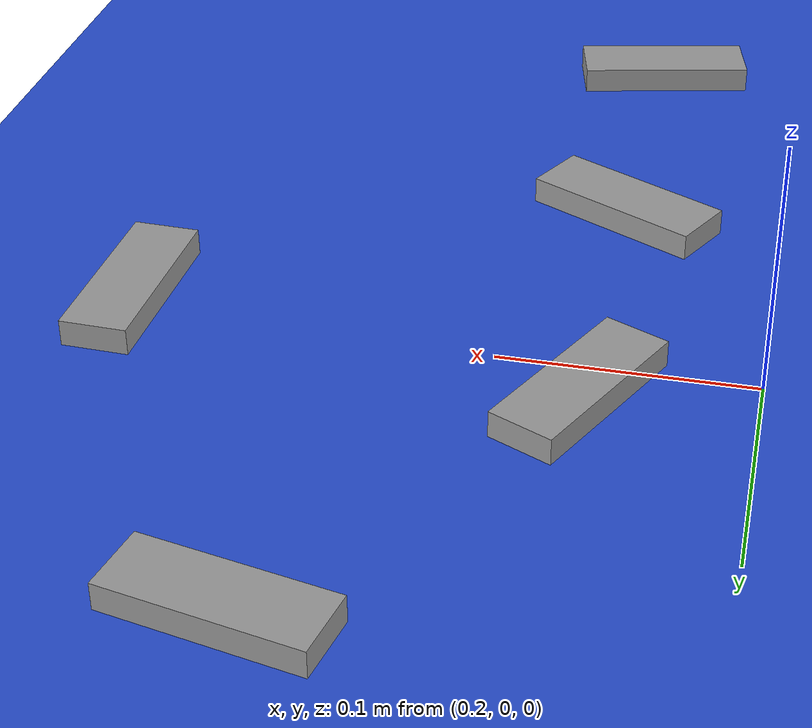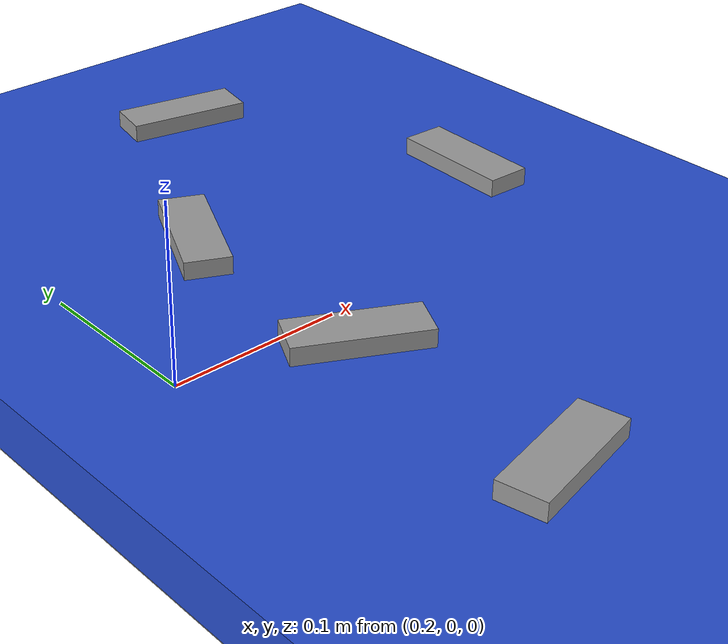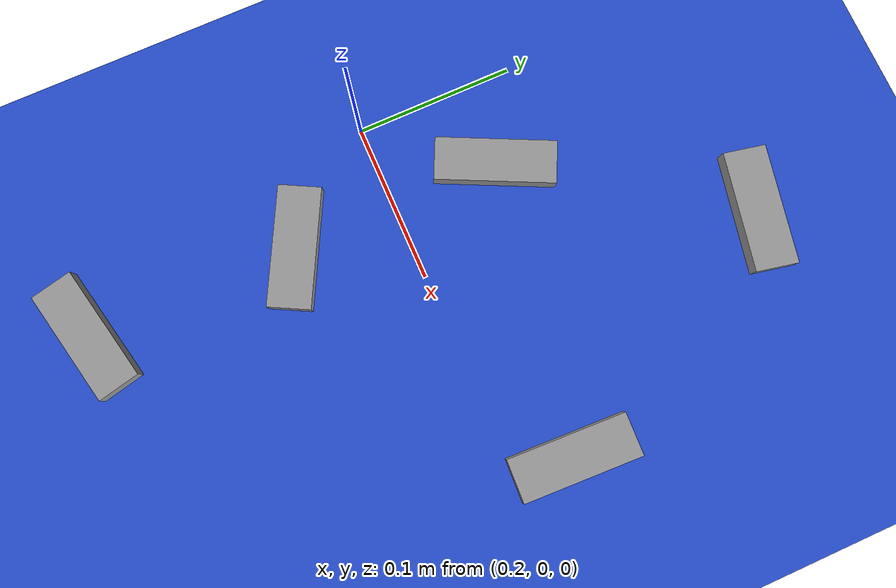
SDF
<sdf version="1.6">
 <world name="default">
  <light name="sun" type="directional">
   <pose>0 0 10 0 -0 0</pose>
   <diffuse>0.8 0.8 0.8 1</diffuse>
   <specular>0.1 0.1 0.1 1</specular>
   <attenuation>
    <range>1000</range>
    <constant>0.9</constant>
    <linear>0.01</linear>
    <quadratic>0.001</quadratic>
   </attenuation>
   <direction>-0.5 0.5 -1</direction>
  </light>
  <model name="ground_plane">
   <static>1</static>
   <link name="link">
    <collision name="collision">
     <geometry><plane><normal>0 0 1</normal><size>100 100</size></plane></geometry>
     <surface><friction><ode><mu>100</mu><mu2>50</mu2></ode></friction></surface>
    </collision>
    <visual name="visual">
     <cast_shadows>0</cast_shadows>
     <geometry><plane><normal>0 0 1</normal><size>100 100</size></plane></geometry>
     <material>
      <script><uri>file://media/materials/scripts/gazebo.material</uri><name>Gazebo/Grey</name></script>
     </material>
    </visual>
   </link>
  </model>
  <gravity>0 0 -9.8</gravity>
  <magnetic_field>6e-06 2.3e-05 -4.2e-05</magnetic_field>
  <atmosphere type="adiabatic"/>
  <physics name="default_physics" default="0" type="ode">
   <max_step_size>0.001</max_step_size>
   <real_time_factor>1</real_time_factor>
   <real_time_update_rate>1000</real_time_update_rate>
  </physics>
  <scene><ambient>0.4 0.4 0.4 1</ambient><background>0.7 0.7 0.7 1</background><shadows>1</shadows></scene>
  <spherical_coordinates>
   <surface_model>EARTH_WGS84</surface_model>
   <latitude_deg>0</latitude_deg>
   <longitude_deg>0</longitude_deg>
   <elevation>0</elevation>
   <heading_deg>0</heading_deg>
  </spherical_coordinates>
  <model name="sherdmat">
   <link name="link">
    <pose>0 0 0.031 0 -0 0</pose>
    <inertial>
     <mass>5</mass>
     <inertia><ixx>5</ixx><ixy>0</ixy><ixz>0</ixz><iyy>5</iyy><iyz>0</iyz><izz>5</izz></inertia>
    </inertial>
    <collision name="collision">
     <geometry><mesh><uri>model://sherdmat/meshes/SherdMat.dae</uri><scale>1 1 1</scale></mesh></geometry>
    </collision>
    <visual name="visual">
     <material>
      <script><uri>file://media/materials/scripts/gazebo.material</uri><name>Gazebo/Blue</name></script>
     </material>
     <geometry><mesh><uri>model://sherdmat/meshes/SherdMat.dae</uri><scale>1 1 1</scale></mesh></geometry>
    </visual>
   </link>
   <pose>-0.514881 0.381544 -0.001 0 0 -1e-06</pose>
  </model>
  <model name="stone_7_2_5_1cm">
   <link name="link">
    <pose>0 0 0.005 0 -0 0</pose>
    <inertial>
     <mass>0.0628</mass>
     <inertia>
      <ixx>3.79417e-06</ixx>
      <ixy>0</ixy>
      <ixz>0</ixz>
      <iyy>5.28567e-05</iyy>
      <iyz>0</iyz>
      <izz>5.56042e-05</izz>
     </inertia>
    </inertial>
    <collision name="collision">
     <geometry><box><size>0.07 0.025 0.01</size></box></geometry>
     <surface>
      <contact>
       <poissons_ratio>0.15</poissons_ratio>
       <elastic_modulus>8e+10</elastic_modulus>
       <ode><kp>100000</kp><kd>100</kd><max_vel>100</max_vel><min_depth>0.001</min_depth></ode>
      </contact>
      <friction>
       <torsional>
        <coefficient>1</coefficient>
        <use_patch_radius>0</use_patch_radius>
        <surface_radius>0.01</surface_radius>
       </torsional>
      </friction>
     </surface>
    </collision>
    <visual name="visual">
     <geometry><box><size>0.07 0.025 0.01</size></box></geometry>
     <material>
      <script><uri>file://media/materials/scripts/gazebo.material</uri><name>Gazebo/Grey</name></script>
     </material>
    </visual>
   </link>
   <pose>0.26 -0.0625 0.029998 0 0 -0.47644</pose>
  </model>
  <model name="stone_7_2_5_1cm_0">
   <link name="link">
    <pose>0 0 0.005 0 -0 0</pose>
    <inertial>
     <mass>0.0628</mass>
     <inertia>
      <ixx>3.79417e-06</ixx>
      <ixy>0</ixy>
      <ixz>0</ixz>
      <iyy>5.28567e-05</iyy>
      <iyz>0</iyz>
      <izz>5.56042e-05</izz>
     </inertia>
    </inertial>
    <collision name="collision">
     <geometry><box><size>0.07 0.025 0.01</size></box></geometry>
     <surface>
      <contact>
       <poissons_ratio>0.15</poissons_ratio>
       <elastic_modulus>8e+10</elastic_modulus>
       <ode><kp>100000</kp><kd>100</kd><max_vel>100</max_vel><min_depth>0.001</min_depth></ode>
      </contact>
      <friction>
       <torsional>
        <coefficient>1</coefficient>
        <use_patch_radius>0</use_patch_radius>
        <surface_radius>0.01</surface_radius>
       </torsional>
      </friction>
     </surface>
    </collision>
    <visual name="visual">
     <geometry><box><size>0.07 0.025 0.01</size></box></geometry>
     <material>
      <script><uri>file://media/materials/scripts/gazebo.material</uri><name>Gazebo/Grey</name></script>
     </material>
    </visual>
   </link>
   <pose>0.345 0.1875 0.029998 0 0 -0.201811</pose>
  </model>
  <model name="stone_7_2_5_1cm_1">
   <link name="link">
    <pose>0 0 0.005 0 -0 0</pose>
    <inertial>
     <mass>0.0628</mass>
     <inertia>
      <ixx>3.79417e-06</ixx>
      <ixy>0</ixy>
      <ixz>0</ixz>
      <iyy>5.28567e-05</iyy>
      <iyz>0</iyz>
      <izz>5.56042e-05</izz>
     </inertia>
    </inertial>
    <collision name="collision">
     <geometry><box><size>0.07 0.025 0.01</size></box></geometry>
     <surface>
      <contact>
       <poissons_ratio>0.15</poissons_ratio>
       <elastic_modulus>8e+10</elastic_modulus>
       <ode><kp>100000</kp><kd>100</kd><max_vel>100</max_vel><min_depth>0.001</min_depth></ode>
      </contact>
      <friction>
       <torsional>
        <coefficient>1</coefficient>
        <use_patch_radius>0</use_patch_radius>
        <surface_radius>0.01</surface_radius>
       </torsional>
      </friction>
     </surface>
    </collision>
    <visual name="visual">
     <geometry><box><size>0.07 0.025 0.01</size></box></geometry>
     <material>
      <script><uri>file://media/materials/scripts/gazebo.material</uri><name>Gazebo/Grey</name></script>
     </material>
    </visual>
   </link>
   <pose>0.259561 0.06174 0.029998 0 -0 1.12592</pose>
  </model>
  <model name="stone_7_2_5_1cm_2">
   <link name="link">
    <pose>0 0 0.005 0 -0 0</pose>
    <inertial>
     <mass>0.0007</mass>
     <inertia>
      <ixx>3.79417e-08</ixx>
      <ixy>0</ixy>
      <ixz>0</ixz>
      <iyy>5.28567e-07</iyy>
      <iyz>0</iyz>
      <izz>5.56042e-07</izz>
     </inertia>
    </inertial>
    <collision name="collision">
     <geometry><box><size>0.07 0.025 0.01</size></box></geometry>
     <surface>
      <contact>
       <poissons_ratio>0.15</poissons_ratio>
       <elastic_modulus>8e+10</elastic_modulus>
       <ode><kp>100000</kp><kd>100</kd><max_vel>100</max_vel><min_depth>0.001</min_depth></ode>
      </contact>
      <friction>
       <torsional>
        <coefficient>1</coefficient>
        <use_patch_radius>1</use_patch_radius>
        <surface_radius>0</surface_radius>
       </torsional>
       <ode><mu>1.0</mu><mu2>1.0</mu2><fdir1>0 0 1</fdir1><fdir2>1 0 0</fdir2></ode>
      </friction>
     </surface>
    </collision>
    <visual name="visual">
     <geometry><box><size>0.07 0.025 0.01</size></box></geometry>
     <material>
      <script><uri>file://media/materials/scripts/gazebo.material</uri><name>Gazebo/Grey</name></script>
     </material>
    </visual>
   </link>
   <pose>0.26 -0.1875 0.029998 0 -0 0.218198</pose>
  </model>
  <model name="stone_7_2_5_1cm_3">
   <link name="link">
    <pose>0 0 0.005 0 -0 0</pose>
    <inertial>
     <mass>0.0628</mass>
     <inertia>
      <ixx>3.79417e-06</ixx>
      <ixy>0</ixy>
      <ixz>0</ixz>
      <iyy>5.28567e-05</iyy>
      <iyz>0</iyz>
      <izz>5.56042e-05</izz>
     </inertia>
    </inertial>
    <collision name="collision">
     <geometry><box><size>0.07 0.025 0.01</size></box></geometry>
     <surface>
      <contact>
       <poissons_ratio>0.15</poissons_ratio>
       <elastic_modulus>8e+10</elastic_modulus>
       <ode><kp>100000</kp><kd>100</kd><max_vel>100</max_vel><min_depth>0.001</min_depth></ode>
      </contact>
      <friction>
       <torsional>
        <coefficient>1</coefficient>
        <use_patch_radius>0</use_patch_radius>
        <surface_radius>0.01</surface_radius>
       </torsional>
      </friction>
     </surface>
    </collision>
    <visual name="visual">
     <geometry><box><size>0.07 0.025 0.01</size></box></geometry>
     <material>
      <script><uri>file://media/materials/scripts/gazebo.material</uri><name>Gazebo/Grey</name></script>
     </material>
    </visual>
   </link>
   <pose>0.428 0.032499 0.029998 0 -0 1.5302</pose>
  </model>
 </world>
</sdf>
